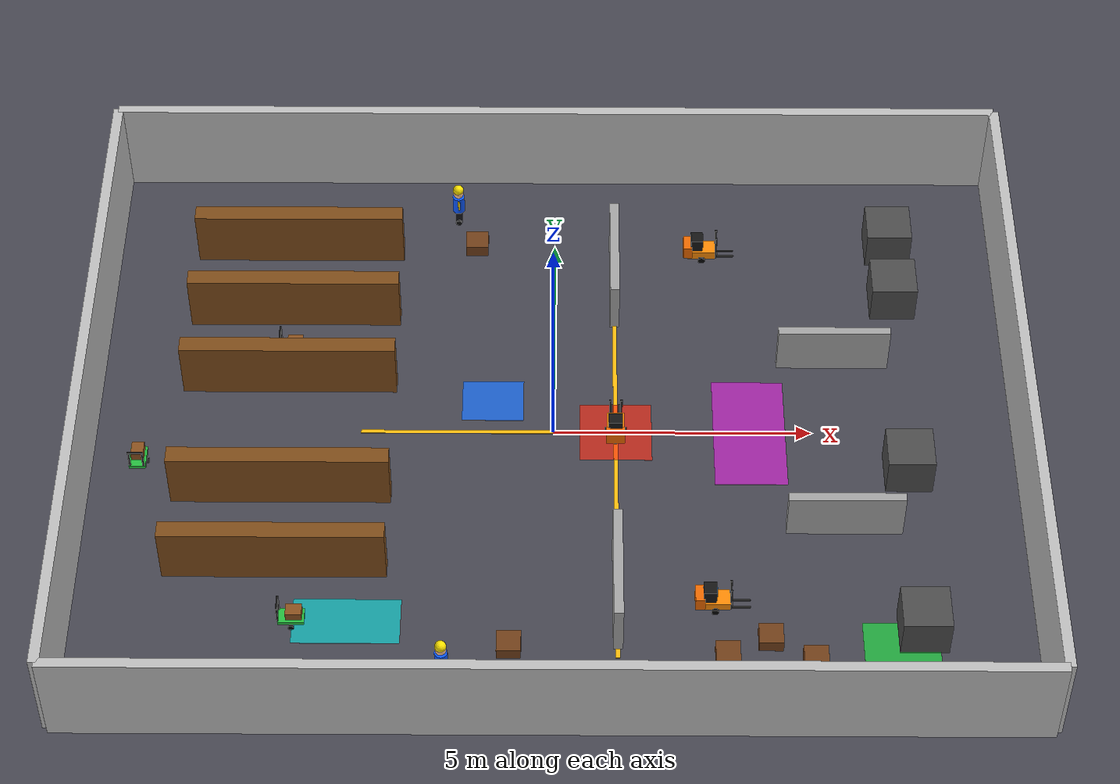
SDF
<?xml version="1.0" ?>
<sdf version="1.9">
<world name="warehouse_world">

<scene>
  <ambient>0.85 0.85 0.85 1</ambient>
  <background>0.9 0.9 0.9 1</background>
  <shadows>false</shadows>
</scene>

<physics name="physics" type="ode">
  <max_step_size>0.001</max_step_size>
  <real_time_factor>1.0</real_time_factor>
  <real_time_update_rate>1000</real_time_update_rate>
</physics>

<plugin filename="gz-sim-physics-system" name="gz::sim::systems::Physics"/>
<plugin filename="gz-sim-user-commands-system" name="gz::sim::systems::UserCommands"/>
<plugin filename="gz-sim-scene-broadcaster-system" name="gz::sim::systems::SceneBroadcaster"/>
<plugin filename="gz-sim-sensors-system" name="gz::sim::systems::Sensors">
  <render_engine>ogre2</render_engine>
</plugin>

<light type="directional" name="sun">
  <cast_shadows>false</cast_shadows>
  <pose>0 0 20 0 0 0</pose>
  <diffuse>1 1 1 1</diffuse>
  <specular>0.5 0.5 0.5 1</specular>
  <direction>-0.3 0.3 -1</direction>
</light>

<model name="ground">
  <static>true</static>
  <link name="ground_link">
    <collision name="collision">
      <geometry><plane><normal>0 0 1</normal><size>18 14</size></plane></geometry>
      <surface><friction><ode><mu>0.9</mu><mu2>0.9</mu2></ode></friction></surface>
    </collision>
    <visual name="visual">
      <geometry><plane><normal>0 0 1</normal><size>18 14</size></plane></geometry>
      <material><ambient>0.28 0.28 0.32 1</ambient><diffuse>0.28 0.28 0.32 1</diffuse></material>
    </visual>
  </link>
</model>

<model name="floor_markings">
  <static>true</static>
  <link name="main_lane_center_line">
    <pose>1.2 0 0.006 0 0 0</pose>
    <visual name="visual"><geometry><box><size>0.08 10.8 0.01</size></box></geometry><material><ambient>1.0 0.75 0.05 1</ambient><diffuse>1.0 0.75 0.05 1</diffuse></material></visual>
  </link>
  <link name="crossing_lane">
    <pose>0 0.0 0.007 0 0 0</pose>
    <visual name="visual"><geometry><box><size>7.5 0.08 0.01</size></box></geometry><material><ambient>1.0 0.75 0.05 1</ambient><diffuse>1.0 0.75 0.05 1</diffuse></material></visual>
  </link>
  <link name="robot_start_zone">
    <pose>-1.2 0.8 0.008 0 0 0</pose>
    <visual name="visual"><geometry><box><size>1.2 1.0 0.01</size></box></geometry><material><ambient>0.1 0.45 1.0 0.75</ambient><diffuse>0.1 0.45 1.0 0.75</diffuse></material></visual>
  </link>
  <link name="crossing_zone">
    <pose>1.2 0.0 0.009 0 0 0</pose>
    <visual name="visual"><geometry><box><size>1.4 1.4 0.01</size></box></geometry><material><ambient>1.0 0.15 0.05 0.65</ambient><diffuse>1.0 0.15 0.05 0.65</diffuse></material></visual>
  </link>
  <link name="head_on_zone">
    <pose>3.8 0.0 0.009 0 0 0</pose>
    <visual name="visual"><geometry><box><size>1.4 2.6 0.01</size></box></geometry><material><ambient>0.9 0.1 0.9 0.6</ambient><diffuse>0.9 0.1 0.9 0.6</diffuse></material></visual>
  </link>
  <link name="parking_zone">
    <pose>6.4 -5.2 0.009 0 0 0</pose>
    <visual name="visual"><geometry><box><size>1.4 1.2 0.01</size></box></geometry><material><ambient>0.1 0.9 0.25 0.65</ambient><diffuse>0.1 0.9 0.25 0.65</diffuse></material></visual>
  </link>
  <link name="prediction_test_zone">
    <pose>-3.8 -4.6 0.009 0 0 0</pose>
    <visual name="visual"><geometry><box><size>2.0 1.0 0.01</size></box></geometry><material><ambient>0.0 0.9 0.9 0.6</ambient><diffuse>0.0 0.9 0.9 0.6</diffuse></material></visual>
  </link>
</model>

<model name="warehouse_walls">
  <static>true</static>
  <link name="north_wall"><pose>0 7 1 0 0 0</pose><collision name="collision"><geometry><box><size>18 0.2 2</size></box></geometry></collision><visual name="visual"><geometry><box><size>18 0.2 2</size></box></geometry><material><ambient>0.75 0.75 0.75 1</ambient><diffuse>0.75 0.75 0.75 1</diffuse></material></visual></link>
  <link name="south_wall"><pose>0 -7 1 0 0 0</pose><collision name="collision"><geometry><box><size>18 0.2 2</size></box></geometry></collision><visual name="visual"><geometry><box><size>18 0.2 2</size></box></geometry><material><ambient>0.75 0.75 0.75 1</ambient><diffuse>0.75 0.75 0.75 1</diffuse></material></visual></link>
  <link name="east_wall"><pose>9 0 1 0 0 0</pose><collision name="collision"><geometry><box><size>0.2 14 2</size></box></geometry></collision><visual name="visual"><geometry><box><size>0.2 14 2</size></box></geometry><material><ambient>0.75 0.75 0.75 1</ambient><diffuse>0.75 0.75 0.75 1</diffuse></material></visual></link>
  <link name="west_wall"><pose>-9 0 1 0 0 0</pose><collision name="collision"><geometry><box><size>0.2 14 2</size></box></geometry></collision><visual name="visual"><geometry><box><size>0.2 14 2</size></box></geometry><material><ambient>0.75 0.75 0.75 1</ambient><diffuse>0.75 0.75 0.75 1</diffuse></material></visual></link>
</model>

<model name="storage_racks">
  <static>true</static>
  <link name="rack_1"><pose>-5.2 4.8 0.6 0 0 0</pose><collision name="collision"><geometry><box><size>4.2 0.35 1.2</size></box></geometry></collision><visual name="visual"><geometry><box><size>4.2 0.35 1.2</size></box></geometry><material><ambient>0.5 0.3 0.1 1</ambient><diffuse>0.5 0.3 0.1 1</diffuse></material></visual></link>
  <link name="rack_2"><pose>-5.2 3.0 0.6 0 0 0</pose><collision name="collision"><geometry><box><size>4.2 0.35 1.2</size></box></geometry></collision><visual name="visual"><geometry><box><size>4.2 0.35 1.2</size></box></geometry><material><ambient>0.5 0.3 0.1 1</ambient><diffuse>0.5 0.3 0.1 1</diffuse></material></visual></link>
  <link name="rack_3"><pose>-5.2 1.2 0.6 0 0 0</pose><collision name="collision"><geometry><box><size>4.2 0.35 1.2</size></box></geometry></collision><visual name="visual"><geometry><box><size>4.2 0.35 1.2</size></box></geometry><material><ambient>0.5 0.3 0.1 1</ambient><diffuse>0.5 0.3 0.1 1</diffuse></material></visual></link>
  <link name="rack_4"><pose>-5.2 -1.6 0.6 0 0 0</pose><collision name="collision"><geometry><box><size>4.2 0.35 1.2</size></box></geometry></collision><visual name="visual"><geometry><box><size>4.2 0.35 1.2</size></box></geometry><material><ambient>0.5 0.3 0.1 1</ambient><diffuse>0.5 0.3 0.1 1</diffuse></material></visual></link>
  <link name="rack_5"><pose>-5.2 -3.4 0.6 0 0 0</pose><collision name="collision"><geometry><box><size>4.2 0.35 1.2</size></box></geometry></collision><visual name="visual"><geometry><box><size>4.2 0.35 1.2</size></box></geometry><material><ambient>0.5 0.3 0.1 1</ambient><diffuse>0.5 0.3 0.1 1</diffuse></material></visual></link>
</model>

<model name="internal_walls">
  <static>true</static>
  <link name="partition_1"><pose>1.2 4.0 0.55 0 0 0</pose><collision name="collision"><geometry><box><size>0.18 2.4 1.1</size></box></geometry></collision><visual name="visual"><geometry><box><size>0.18 2.4 1.1</size></box></geometry><material><ambient>0.65 0.65 0.65 1</ambient><diffuse>0.65 0.65 0.65 1</diffuse></material></visual></link>
  <link name="partition_2"><pose>1.2 -4.0 0.55 0 0 0</pose><collision name="collision"><geometry><box><size>0.18 2.4 1.1</size></box></geometry></collision><visual name="visual"><geometry><box><size>0.18 2.4 1.1</size></box></geometry><material><ambient>0.65 0.65 0.65 1</ambient><diffuse>0.65 0.65 0.65 1</diffuse></material></visual></link>
  <link name="short_wall_1"><pose>5.5 1.8 0.5 0 0 0</pose><collision name="collision"><geometry><box><size>2.2 0.18 1.0</size></box></geometry></collision><visual name="visual"><geometry><box><size>2.2 0.18 1.0</size></box></geometry><material><ambient>0.65 0.65 0.65 1</ambient><diffuse>0.65 0.65 0.65 1</diffuse></material></visual></link>
  <link name="short_wall_2"><pose>5.5 -2.4 0.5 0 0 0</pose><collision name="collision"><geometry><box><size>2.2 0.18 1.0</size></box></geometry></collision><visual name="visual"><geometry><box><size>2.2 0.18 1.0</size></box></geometry><material><ambient>0.65 0.65 0.65 1</ambient><diffuse>0.65 0.65 0.65 1</diffuse></material></visual></link>
</model>

<model name="machines">
  <static>true</static>
  <link name="machine_1"><pose>6.8 5.0 0.4 0 0 0</pose><collision name="collision"><geometry><box><size>0.9 0.9 0.8</size></box></geometry></collision><visual name="visual"><geometry><box><size>0.9 0.9 0.8</size></box></geometry><material><ambient>0.3 0.3 0.3 1</ambient><diffuse>0.3 0.3 0.3 1</diffuse></material></visual></link>
  <link name="machine_2"><pose>6.8 3.5 0.4 0 0 0</pose><collision name="collision"><geometry><box><size>0.9 0.9 0.8</size></box></geometry></collision><visual name="visual"><geometry><box><size>0.9 0.9 0.8</size></box></geometry><material><ambient>0.3 0.3 0.3 1</ambient><diffuse>0.3 0.3 0.3 1</diffuse></material></visual></link>
  <link name="machine_3"><pose>6.8 -1.0 0.4 0 0 0</pose><collision name="collision"><geometry><box><size>0.9 0.9 0.8</size></box></geometry></collision><visual name="visual"><geometry><box><size>0.9 0.9 0.8</size></box></geometry><material><ambient>0.3 0.3 0.3 1</ambient><diffuse>0.3 0.3 0.3 1</diffuse></material></visual></link>
  <link name="machine_4"><pose>6.8 -4.8 0.4 0 0 0</pose><collision name="collision"><geometry><box><size>0.9 0.9 0.8</size></box></geometry></collision><visual name="visual"><geometry><box><size>0.9 0.9 0.8</size></box></geometry><material><ambient>0.3 0.3 0.3 1</ambient><diffuse>0.3 0.3 0.3 1</diffuse></material></visual></link>
</model>

<model name="pallets">
  <static>true</static>
  <link name="pallet_1"><pose>3.2 -5.4 0.125 0 0 0</pose><collision name="collision"><geometry><box><size>0.45 0.45 0.25</size></box></geometry></collision><visual name="visual"><geometry><box><size>0.45 0.45 0.25</size></box></geometry><material><ambient>0.45 0.25 0.1 1</ambient><diffuse>0.45 0.25 0.1 1</diffuse></material></visual></link>
  <link name="pallet_2"><pose>4.0 -5.0 0.125 0 0 0</pose><collision name="collision"><geometry><box><size>0.45 0.45 0.25</size></box></geometry></collision><visual name="visual"><geometry><box><size>0.45 0.45 0.25</size></box></geometry><material><ambient>0.45 0.25 0.1 1</ambient><diffuse>0.45 0.25 0.1 1</diffuse></material></visual></link>
  <link name="pallet_3"><pose>4.8 -5.5 0.125 0 0 0</pose><collision name="collision"><geometry><box><size>0.45 0.45 0.25</size></box></geometry></collision><visual name="visual"><geometry><box><size>0.45 0.45 0.25</size></box></geometry><material><ambient>0.45 0.25 0.1 1</ambient><diffuse>0.45 0.25 0.1 1</diffuse></material></visual></link>
  <link name="pallet_4"><pose>-0.8 -5.2 0.125 0 0 0</pose><collision name="collision"><geometry><box><size>0.45 0.45 0.25</size></box></geometry></collision><visual name="visual"><geometry><box><size>0.45 0.45 0.25</size></box></geometry><material><ambient>0.45 0.25 0.1 1</ambient><diffuse>0.45 0.25 0.1 1</diffuse></material></visual></link>
  <link name="pallet_5"><pose>-1.6 5.0 0.125 0 0 0</pose><collision name="collision"><geometry><box><size>0.45 0.45 0.25</size></box></geometry></collision><visual name="visual"><geometry><box><size>0.45 0.45 0.25</size></box></geometry><material><ambient>0.45 0.25 0.1 1</ambient><diffuse>0.45 0.25 0.1 1</diffuse></material></visual></link>
</model>

<model name="forklift_1">
  <static>false</static>
  <self_collide>false</self_collide>
  <pose>1.2 0.0 0 0 0 1.57</pose>

  <link name="base_link">
    <inertial>
      <pose>0 0 0.11 0 0 0</pose>
      <mass>10.0</mass>
      <inertia>
        <ixx>0.45</ixx>
        <iyy>0.55</iyy>
        <izz>0.45</izz>
      </inertia>
    </inertial>

    <collision name="body_collision">
      <pose>0 0 0.18 0 0 0</pose>
      <geometry><box><size>0.56 0.34 0.18</size></box></geometry>
      <surface>
        <contact><ode><kp>50000</kp><kd>40</kd></ode></contact>
        <friction><ode><mu>0.8</mu><mu2>0.8</mu2></ode></friction>
      </surface>
    </collision>

    <collision name="front_support_collision">
      <pose>0.28 0 0.06 0 0 0</pose>
      <geometry><sphere><radius>0.055</radius></sphere></geometry>
      <surface><friction><ode><mu>0.15</mu><mu2>0.15</mu2></ode></friction></surface>
    </collision>

    <collision name="rear_support_collision">
      <pose>-0.28 0 0.06 0 0 0</pose>
      <geometry><sphere><radius>0.055</radius></sphere></geometry>
      <surface><friction><ode><mu>0.15</mu><mu2>0.15</mu2></ode></friction></surface>
    </collision>

    <visual name="body">
      <pose>0 0 0.18 0 0 0</pose>
      <geometry><box><size>0.56 0.34 0.18</size></box></geometry>
      <material><ambient>1.0 0.55 0.02 1</ambient><diffuse>1.0 0.55 0.02 1</diffuse></material>
    </visual>

    <visual name="counterweight">
      <pose>-0.28 0 0.25 0 0 0</pose>
      <geometry><box><size>0.18 0.36 0.28</size></box></geometry>
      <material><ambient>0.95 0.42 0.0 1</ambient><diffuse>0.95 0.42 0.0 1</diffuse></material>
    </visual>

    <visual name="cabin">
      <pose>-0.10 0 0.40 0 0 0</pose>
      <geometry><box><size>0.24 0.27 0.30</size></box></geometry>
      <material><ambient>0.08 0.08 0.08 1</ambient><diffuse>0.08 0.08 0.08 1</diffuse></material>
    </visual>

    <visual name="window">
      <pose>0.025 0 0.43 0 0 0</pose>
      <geometry><box><size>0.012 0.23 0.16</size></box></geometry>
      <material><ambient>0.1 0.45 0.75 0.85</ambient><diffuse>0.1 0.45 0.75 0.85</diffuse></material>
    </visual>

    <visual name="mast_left">
      <pose>0.29 0.11 0.34 0 0 0</pose>
      <geometry><box><size>0.035 0.035 0.55</size></box></geometry>
      <material><ambient>0.12 0.12 0.12 1</ambient><diffuse>0.12 0.12 0.12 1</diffuse></material>
    </visual>

    <visual name="mast_right">
      <pose>0.29 -0.11 0.34 0 0 0</pose>
      <geometry><box><size>0.035 0.035 0.55</size></box></geometry>
      <material><ambient>0.12 0.12 0.12 1</ambient><diffuse>0.12 0.12 0.12 1</diffuse></material>
    </visual>

    <visual name="fork_left">
      <pose>0.47 0.075 0.065 0 0 0</pose>
      <geometry><box><size>0.38 0.035 0.025</size></box></geometry>
      <material><ambient>0.18 0.18 0.18 1</ambient><diffuse>0.18 0.18 0.18 1</diffuse></material>
    </visual>

    <visual name="fork_right">
      <pose>0.47 -0.075 0.065 0 0 0</pose>
      <geometry><box><size>0.38 0.035 0.025</size></box></geometry>
      <material><ambient>0.18 0.18 0.18 1</ambient><diffuse>0.18 0.18 0.18 1</diffuse></material>
    </visual>

    <visual name="front_caster_visual">
      <pose>0.28 0 0.06 0 0 0</pose>
      <geometry><sphere><radius>0.055</radius></sphere></geometry>
      <material><ambient>0.02 0.02 0.02 1</ambient><diffuse>0.02 0.02 0.02 1</diffuse></material>
    </visual>

    <visual name="rear_caster_visual">
      <pose>-0.28 0 0.06 0 0 0</pose>
      <geometry><sphere><radius>0.055</radius></sphere></geometry>
      <material><ambient>0.02 0.02 0.02 1</ambient><diffuse>0.02 0.02 0.02 1</diffuse></material>
    </visual>
  </link>

  <link name="left_wheel">
    <pose>0 0.19 0.07 1.5708 0 0</pose>
    <inertial><mass>0.4</mass><inertia><ixx>0.002</ixx><iyy>0.002</iyy><izz>0.002</izz></inertia></inertial>
    <collision name="collision"><geometry><cylinder><radius>0.07</radius><length>0.045</length></cylinder></geometry><surface><friction><ode><mu>1.2</mu><mu2>1.2</mu2></ode></friction></surface></collision>
    <visual name="visual"><geometry><cylinder><radius>0.07</radius><length>0.045</length></cylinder></geometry><material><ambient>0.02 0.02 0.02 1</ambient><diffuse>0.02 0.02 0.02 1</diffuse></material></visual>
  </link>

  <link name="right_wheel">
    <pose>0 -0.19 0.07 1.5708 0 0</pose>
    <inertial><mass>0.4</mass><inertia><ixx>0.002</ixx><iyy>0.002</iyy><izz>0.002</izz></inertia></inertial>
    <collision name="collision"><geometry><cylinder><radius>0.07</radius><length>0.045</length></cylinder></geometry><surface><friction><ode><mu>1.2</mu><mu2>1.2</mu2></ode></friction></surface></collision>
    <visual name="visual"><geometry><cylinder><radius>0.07</radius><length>0.045</length></cylinder></geometry><material><ambient>0.02 0.02 0.02 1</ambient><diffuse>0.02 0.02 0.02 1</diffuse></material></visual>
  </link>

  <joint name="left_wheel_joint" type="revolute">
    <parent>base_link</parent>
    <child>left_wheel</child>
    <axis><xyz>0 0 1</xyz><limit><lower>-1e16</lower><upper>1e16</upper></limit><dynamics><damping>0.2</damping></dynamics></axis>
  </joint>

  <joint name="right_wheel_joint" type="revolute">
    <parent>base_link</parent>
    <child>right_wheel</child>
    <axis><xyz>0 0 1</xyz><limit><lower>-1e16</lower><upper>1e16</upper></limit><dynamics><damping>0.2</damping></dynamics></axis>
  </joint>

  <plugin filename="gz-sim-diff-drive-system" name="gz::sim::systems::DiffDrive">
    <left_joint>left_wheel_joint</left_joint>
    <right_joint>right_wheel_joint</right_joint>
    <wheel_separation>0.38</wheel_separation>
    <wheel_radius>0.07</wheel_radius>
    <topic>/model/forklift_1/cmd_vel</topic>
    <odom_publish_frequency>20</odom_publish_frequency>
    <max_linear_acceleration>0.4</max_linear_acceleration>
    <max_angular_acceleration>0.8</max_angular_acceleration>
  </plugin>
</model>

<model name="forklift_2">
  <static>false</static>
  <self_collide>false</self_collide>
  <pose>3.0 4.8 0 0 0 0</pose>

  <link name="base_link">
    <inertial>
      <pose>0 0 0.11 0 0 0</pose>
      <mass>10.0</mass>
      <inertia>
        <ixx>0.45</ixx>
        <iyy>0.55</iyy>
        <izz>0.45</izz>
      </inertia>
    </inertial>

    <collision name="body_collision">
      <pose>0 0 0.18 0 0 0</pose>
      <geometry><box><size>0.56 0.34 0.18</size></box></geometry>
      <surface>
        <contact><ode><kp>50000</kp><kd>40</kd></ode></contact>
        <friction><ode><mu>0.8</mu><mu2>0.8</mu2></ode></friction>
      </surface>
    </collision>

    <collision name="front_support_collision">
      <pose>0.28 0 0.06 0 0 0</pose>
      <geometry><sphere><radius>0.055</radius></sphere></geometry>
      <surface><friction><ode><mu>0.15</mu><mu2>0.15</mu2></ode></friction></surface>
    </collision>

    <collision name="rear_support_collision">
      <pose>-0.28 0 0.06 0 0 0</pose>
      <geometry><sphere><radius>0.055</radius></sphere></geometry>
      <surface><friction><ode><mu>0.15</mu><mu2>0.15</mu2></ode></friction></surface>
    </collision>

    <visual name="body">
      <pose>0 0 0.18 0 0 0</pose>
      <geometry><box><size>0.56 0.34 0.18</size></box></geometry>
      <material><ambient>1.0 0.55 0.02 1</ambient><diffuse>1.0 0.55 0.02 1</diffuse></material>
    </visual>

    <visual name="counterweight">
      <pose>-0.28 0 0.25 0 0 0</pose>
      <geometry><box><size>0.18 0.36 0.28</size></box></geometry>
      <material><ambient>0.95 0.42 0.0 1</ambient><diffuse>0.95 0.42 0.0 1</diffuse></material>
    </visual>

    <visual name="cabin">
      <pose>-0.10 0 0.40 0 0 0</pose>
      <geometry><box><size>0.24 0.27 0.30</size></box></geometry>
      <material><ambient>0.08 0.08 0.08 1</ambient><diffuse>0.08 0.08 0.08 1</diffuse></material>
    </visual>

    <visual name="window">
      <pose>0.025 0 0.43 0 0 0</pose>
      <geometry><box><size>0.012 0.23 0.16</size></box></geometry>
      <material><ambient>0.1 0.45 0.75 0.85</ambient><diffuse>0.1 0.45 0.75 0.85</diffuse></material>
    </visual>

    <visual name="mast_left">
      <pose>0.29 0.11 0.34 0 0 0</pose>
      <geometry><box><size>0.035 0.035 0.55</size></box></geometry>
      <material><ambient>0.12 0.12 0.12 1</ambient><diffuse>0.12 0.12 0.12 1</diffuse></material>
    </visual>

    <visual name="mast_right">
      <pose>0.29 -0.11 0.34 0 0 0</pose>
      <geometry><box><size>0.035 0.035 0.55</size></box></geometry>
      <material><ambient>0.12 0.12 0.12 1</ambient><diffuse>0.12 0.12 0.12 1</diffuse></material>
    </visual>

    <visual name="fork_left">
      <pose>0.47 0.075 0.065 0 0 0</pose>
      <geometry><box><size>0.38 0.035 0.025</size></box></geometry>
      <material><ambient>0.18 0.18 0.18 1</ambient><diffuse>0.18 0.18 0.18 1</diffuse></material>
    </visual>

    <visual name="fork_right">
      <pose>0.47 -0.075 0.065 0 0 0</pose>
      <geometry><box><size>0.38 0.035 0.025</size></box></geometry>
      <material><ambient>0.18 0.18 0.18 1</ambient><diffuse>0.18 0.18 0.18 1</diffuse></material>
    </visual>

    <visual name="front_caster_visual">
      <pose>0.28 0 0.06 0 0 0</pose>
      <geometry><sphere><radius>0.055</radius></sphere></geometry>
      <material><ambient>0.02 0.02 0.02 1</ambient><diffuse>0.02 0.02 0.02 1</diffuse></material>
    </visual>

    <visual name="rear_caster_visual">
      <pose>-0.28 0 0.06 0 0 0</pose>
      <geometry><sphere><radius>0.055</radius></sphere></geometry>
      <material><ambient>0.02 0.02 0.02 1</ambient><diffuse>0.02 0.02 0.02 1</diffuse></material>
    </visual>
  </link>

  <link name="left_wheel">
    <pose>0 0.19 0.07 1.5708 0 0</pose>
    <inertial><mass>0.4</mass><inertia><ixx>0.002</ixx><iyy>0.002</iyy><izz>0.002</izz></inertia></inertial>
    <collision name="collision"><geometry><cylinder><radius>0.07</radius><length>0.045</length></cylinder></geometry><surface><friction><ode><mu>1.2</mu><mu2>1.2</mu2></ode></friction></surface></collision>
    <visual name="visual"><geometry><cylinder><radius>0.07</radius><length>0.045</length></cylinder></geometry><material><ambient>0.02 0.02 0.02 1</ambient><diffuse>0.02 0.02 0.02 1</diffuse></material></visual>
  </link>

  <link name="right_wheel">
    <pose>0 -0.19 0.07 1.5708 0 0</pose>
    <inertial><mass>0.4</mass><inertia><ixx>0.002</ixx><iyy>0.002</iyy><izz>0.002</izz></inertia></inertial>
    <collision name="collision"><geometry><cylinder><radius>0.07</radius><length>0.045</length></cylinder></geometry><surface><friction><ode><mu>1.2</mu><mu2>1.2</mu2></ode></friction></surface></collision>
    <visual name="visual"><geometry><cylinder><radius>0.07</radius><length>0.045</length></cylinder></geometry><material><ambient>0.02 0.02 0.02 1</ambient><diffuse>0.02 0.02 0.02 1</diffuse></material></visual>
  </link>

  <joint name="left_wheel_joint" type="revolute">
    <parent>base_link</parent>
    <child>left_wheel</child>
    <axis><xyz>0 0 1</xyz><limit><lower>-1e16</lower><upper>1e16</upper></limit><dynamics><damping>0.2</damping></dynamics></axis>
  </joint>

  <joint name="right_wheel_joint" type="revolute">
    <parent>base_link</parent>
    <child>right_wheel</child>
    <axis><xyz>0 0 1</xyz><limit><lower>-1e16</lower><upper>1e16</upper></limit><dynamics><damping>0.2</damping></dynamics></axis>
  </joint>

  <plugin filename="gz-sim-diff-drive-system" name="gz::sim::systems::DiffDrive">
    <left_joint>left_wheel_joint</left_joint>
    <right_joint>right_wheel_joint</right_joint>
    <wheel_separation>0.38</wheel_separation>
    <wheel_radius>0.07</wheel_radius>
    <topic>/model/forklift_2/cmd_vel</topic>
    <odom_publish_frequency>20</odom_publish_frequency>
    <max_linear_acceleration>0.4</max_linear_acceleration>
    <max_angular_acceleration>0.8</max_angular_acceleration>
  </plugin>
</model>

<model name="forklift_3">
  <static>false</static>
  <self_collide>false</self_collide>
  <pose>3.0 -4.2 0 0 0 0</pose>

  <link name="base_link">
    <inertial>
      <pose>0 0 0.11 0 0 0</pose>
      <mass>10.0</mass>
      <inertia>
        <ixx>0.45</ixx>
        <iyy>0.55</iyy>
        <izz>0.45</izz>
      </inertia>
    </inertial>

    <collision name="body_collision">
      <pose>0 0 0.18 0 0 0</pose>
      <geometry><box><size>0.56 0.34 0.18</size></box></geometry>
      <surface>
        <contact><ode><kp>50000</kp><kd>40</kd></ode></contact>
        <friction><ode><mu>0.8</mu><mu2>0.8</mu2></ode></friction>
      </surface>
    </collision>

    <collision name="front_support_collision">
      <pose>0.28 0 0.06 0 0 0</pose>
      <geometry><sphere><radius>0.055</radius></sphere></geometry>
      <surface><friction><ode><mu>0.15</mu><mu2>0.15</mu2></ode></friction></surface>
    </collision>

    <collision name="rear_support_collision">
      <pose>-0.28 0 0.06 0 0 0</pose>
      <geometry><sphere><radius>0.055</radius></sphere></geometry>
      <surface><friction><ode><mu>0.15</mu><mu2>0.15</mu2></ode></friction></surface>
    </collision>

    <visual name="body">
      <pose>0 0 0.18 0 0 0</pose>
      <geometry><box><size>0.56 0.34 0.18</size></box></geometry>
      <material><ambient>1.0 0.55 0.02 1</ambient><diffuse>1.0 0.55 0.02 1</diffuse></material>
    </visual>

    <visual name="counterweight">
      <pose>-0.28 0 0.25 0 0 0</pose>
      <geometry><box><size>0.18 0.36 0.28</size></box></geometry>
      <material><ambient>0.95 0.42 0.0 1</ambient><diffuse>0.95 0.42 0.0 1</diffuse></material>
    </visual>

    <visual name="cabin">
      <pose>-0.10 0 0.40 0 0 0</pose>
      <geometry><box><size>0.24 0.27 0.30</size></box></geometry>
      <material><ambient>0.08 0.08 0.08 1</ambient><diffuse>0.08 0.08 0.08 1</diffuse></material>
    </visual>

    <visual name="window">
      <pose>0.025 0 0.43 0 0 0</pose>
      <geometry><box><size>0.012 0.23 0.16</size></box></geometry>
      <material><ambient>0.1 0.45 0.75 0.85</ambient><diffuse>0.1 0.45 0.75 0.85</diffuse></material>
    </visual>

    <visual name="mast_left">
      <pose>0.29 0.11 0.34 0 0 0</pose>
      <geometry><box><size>0.035 0.035 0.55</size></box></geometry>
      <material><ambient>0.12 0.12 0.12 1</ambient><diffuse>0.12 0.12 0.12 1</diffuse></material>
    </visual>

    <visual name="mast_right">
      <pose>0.29 -0.11 0.34 0 0 0</pose>
      <geometry><box><size>0.035 0.035 0.55</size></box></geometry>
      <material><ambient>0.12 0.12 0.12 1</ambient><diffuse>0.12 0.12 0.12 1</diffuse></material>
    </visual>

    <visual name="fork_left">
      <pose>0.47 0.075 0.065 0 0 0</pose>
      <geometry><box><size>0.38 0.035 0.025</size></box></geometry>
      <material><ambient>0.18 0.18 0.18 1</ambient><diffuse>0.18 0.18 0.18 1</diffuse></material>
    </visual>

    <visual name="fork_right">
      <pose>0.47 -0.075 0.065 0 0 0</pose>
      <geometry><box><size>0.38 0.035 0.025</size></box></geometry>
      <material><ambient>0.18 0.18 0.18 1</ambient><diffuse>0.18 0.18 0.18 1</diffuse></material>
    </visual>

    <visual name="front_caster_visual">
      <pose>0.28 0 0.06 0 0 0</pose>
      <geometry><sphere><radius>0.055</radius></sphere></geometry>
      <material><ambient>0.02 0.02 0.02 1</ambient><diffuse>0.02 0.02 0.02 1</diffuse></material>
    </visual>

    <visual name="rear_caster_visual">
      <pose>-0.28 0 0.06 0 0 0</pose>
      <geometry><sphere><radius>0.055</radius></sphere></geometry>
      <material><ambient>0.02 0.02 0.02 1</ambient><diffuse>0.02 0.02 0.02 1</diffuse></material>
    </visual>
  </link>

  <link name="left_wheel">
    <pose>0 0.19 0.07 1.5708 0 0</pose>
    <inertial><mass>0.4</mass><inertia><ixx>0.002</ixx><iyy>0.002</iyy><izz>0.002</izz></inertia></inertial>
    <collision name="collision"><geometry><cylinder><radius>0.07</radius><length>0.045</length></cylinder></geometry><surface><friction><ode><mu>1.2</mu><mu2>1.2</mu2></ode></friction></surface></collision>
    <visual name="visual"><geometry><cylinder><radius>0.07</radius><length>0.045</length></cylinder></geometry><material><ambient>0.02 0.02 0.02 1</ambient><diffuse>0.02 0.02 0.02 1</diffuse></material></visual>
  </link>

  <link name="right_wheel">
    <pose>0 -0.19 0.07 1.5708 0 0</pose>
    <inertial><mass>0.4</mass><inertia><ixx>0.002</ixx><iyy>0.002</iyy><izz>0.002</izz></inertia></inertial>
    <collision name="collision"><geometry><cylinder><radius>0.07</radius><length>0.045</length></cylinder></geometry><surface><friction><ode><mu>1.2</mu><mu2>1.2</mu2></ode></friction></surface></collision>
    <visual name="visual"><geometry><cylinder><radius>0.07</radius><length>0.045</length></cylinder></geometry><material><ambient>0.02 0.02 0.02 1</ambient><diffuse>0.02 0.02 0.02 1</diffuse></material></visual>
  </link>

  <joint name="left_wheel_joint" type="revolute">
    <parent>base_link</parent>
    <child>left_wheel</child>
    <axis><xyz>0 0 1</xyz><limit><lower>-1e16</lower><upper>1e16</upper></limit><dynamics><damping>0.2</damping></dynamics></axis>
  </joint>

  <joint name="right_wheel_joint" type="revolute">
    <parent>base_link</parent>
    <child>right_wheel</child>
    <axis><xyz>0 0 1</xyz><limit><lower>-1e16</lower><upper>1e16</upper></limit><dynamics><damping>0.2</damping></dynamics></axis>
  </joint>

  <plugin filename="gz-sim-diff-drive-system" name="gz::sim::systems::DiffDrive">
    <left_joint>left_wheel_joint</left_joint>
    <right_joint>right_wheel_joint</right_joint>
    <wheel_separation>0.38</wheel_separation>
    <wheel_radius>0.07</wheel_radius>
    <topic>/model/forklift_3/cmd_vel</topic>
    <odom_publish_frequency>20</odom_publish_frequency>
    <max_linear_acceleration>0.4</max_linear_acceleration>
    <max_angular_acceleration>0.8</max_angular_acceleration>
  </plugin>
</model>

<model name="human_1">
  <static>false</static>
  <self_collide>false</self_collide>
  <pose>-2.0 5.8 0 0 0 0</pose>

  <link name="base_link">
    <inertial><pose>0 0 0.2 0 0 0</pose><mass>2.5</mass><inertia><ixx>0.08</ixx><iyy>0.08</iyy><izz>0.08</izz></inertia></inertial>
    <collision name="collision"><pose>0 0 0.38 0 0 0</pose><geometry><cylinder><radius>0.13</radius><length>0.75</length></cylinder></geometry></collision>
    <visual name="legs"><pose>0 0 0.18 0 0 0</pose><geometry><box><size>0.14 0.18 0.34</size></box></geometry><material><ambient>0.08 0.08 0.10 1</ambient><diffuse>0.08 0.08 0.10 1</diffuse></material></visual>
    <visual name="torso"><pose>0 0 0.50 0 0 0</pose><geometry><cylinder><radius>0.12</radius><length>0.38</length></cylinder></geometry><material><ambient>0.05 0.35 1.0 1</ambient><diffuse>0.05 0.35 1.0 1</diffuse></material></visual>
    <visual name="safety_vest"><pose>0.01 0 0.53 0 0 0</pose><geometry><box><size>0.035 0.245 0.26</size></box></geometry><material><ambient>1.0 0.85 0.05 1</ambient><diffuse>1.0 0.85 0.05 1</diffuse></material></visual>
    <visual name="head"><pose>0 0 0.78 0 0 0</pose><geometry><sphere><radius>0.105</radius></sphere></geometry><material><ambient>1.0 0.78 0.58 1</ambient><diffuse>1.0 0.78 0.58 1</diffuse></material></visual>
    <visual name="helmet"><pose>0 0 0.875 0 0 0</pose><geometry><sphere><radius>0.108</radius></sphere></geometry><material><ambient>1.0 0.9 0.0 1</ambient><diffuse>1.0 0.9 0.0 1</diffuse></material></visual>
  </link>

  <link name="left_wheel"><pose>0 0.13 0.06 1.5708 0 0</pose><inertial><mass>0.05</mass><inertia><ixx>0.0001</ixx><iyy>0.0001</iyy><izz>0.0001</izz></inertia></inertial><collision name="collision"><geometry><cylinder><radius>0.06</radius><length>0.03</length></cylinder></geometry></collision><visual name="visual"><geometry><cylinder><radius>0.06</radius><length>0.03</length></cylinder></geometry><material><ambient>0.05 0.05 0.05 1</ambient><diffuse>0.05 0.05 0.05 1</diffuse></material></visual></link>
  <link name="right_wheel"><pose>0 -0.13 0.06 1.5708 0 0</pose><inertial><mass>0.05</mass><inertia><ixx>0.0001</ixx><iyy>0.0001</iyy><izz>0.0001</izz></inertia></inertial><collision name="collision"><geometry><cylinder><radius>0.06</radius><length>0.03</length></cylinder></geometry></collision><visual name="visual"><geometry><cylinder><radius>0.06</radius><length>0.03</length></cylinder></geometry><material><ambient>0.05 0.05 0.05 1</ambient><diffuse>0.05 0.05 0.05 1</diffuse></material></visual></link>

  <joint name="left_wheel_joint" type="revolute"><parent>base_link</parent><child>left_wheel</child><axis><xyz>0 0 1</xyz><limit><lower>-1e16</lower><upper>1e16</upper></limit><dynamics><damping>0.1</damping></dynamics></axis></joint>
  <joint name="right_wheel_joint" type="revolute"><parent>base_link</parent><child>right_wheel</child><axis><xyz>0 0 1</xyz><limit><lower>-1e16</lower><upper>1e16</upper></limit><dynamics><damping>0.1</damping></dynamics></axis></joint>

  <plugin filename="gz-sim-diff-drive-system" name="gz::sim::systems::DiffDrive">
    <left_joint>left_wheel_joint</left_joint>
    <right_joint>right_wheel_joint</right_joint>
    <wheel_separation>0.26</wheel_separation>
    <wheel_radius>0.06</wheel_radius>
    <topic>/model/human_1/cmd_vel</topic>
    <odom_publish_frequency>20</odom_publish_frequency>
    <max_linear_acceleration>0.35</max_linear_acceleration>
    <max_angular_acceleration>0.7</max_angular_acceleration>
  </plugin>
</model>

<model name="human_2">
  <static>false</static>
  <self_collide>false</self_collide>
  <pose>-2.0 -5.8 0 0 0 0</pose>

  <link name="base_link">
    <inertial><pose>0 0 0.2 0 0 0</pose><mass>2.5</mass><inertia><ixx>0.08</ixx><iyy>0.08</iyy><izz>0.08</izz></inertia></inertial>
    <collision name="collision"><pose>0 0 0.38 0 0 0</pose><geometry><cylinder><radius>0.13</radius><length>0.75</length></cylinder></geometry></collision>
    <visual name="legs"><pose>0 0 0.18 0 0 0</pose><geometry><box><size>0.14 0.18 0.34</size></box></geometry><material><ambient>0.08 0.08 0.10 1</ambient><diffuse>0.08 0.08 0.10 1</diffuse></material></visual>
    <visual name="torso"><pose>0 0 0.50 0 0 0</pose><geometry><cylinder><radius>0.12</radius><length>0.38</length></cylinder></geometry><material><ambient>0.05 0.35 1.0 1</ambient><diffuse>0.05 0.35 1.0 1</diffuse></material></visual>
    <visual name="safety_vest"><pose>0.01 0 0.53 0 0 0</pose><geometry><box><size>0.035 0.245 0.26</size></box></geometry><material><ambient>1.0 0.85 0.05 1</ambient><diffuse>1.0 0.85 0.05 1</diffuse></material></visual>
    <visual name="head"><pose>0 0 0.78 0 0 0</pose><geometry><sphere><radius>0.105</radius></sphere></geometry><material><ambient>1.0 0.78 0.58 1</ambient><diffuse>1.0 0.78 0.58 1</diffuse></material></visual>
    <visual name="helmet"><pose>0 0 0.875 0 0 0</pose><geometry><sphere><radius>0.108</radius></sphere></geometry><material><ambient>1.0 0.9 0.0 1</ambient><diffuse>1.0 0.9 0.0 1</diffuse></material></visual>
  </link>

  <link name="left_wheel"><pose>0 0.13 0.06 1.5708 0 0</pose><inertial><mass>0.05</mass><inertia><ixx>0.0001</ixx><iyy>0.0001</iyy><izz>0.0001</izz></inertia></inertial><collision name="collision"><geometry><cylinder><radius>0.06</radius><length>0.03</length></cylinder></geometry></collision><visual name="visual"><geometry><cylinder><radius>0.06</radius><length>0.03</length></cylinder></geometry><material><ambient>0.05 0.05 0.05 1</ambient><diffuse>0.05 0.05 0.05 1</diffuse></material></visual></link>
  <link name="right_wheel"><pose>0 -0.13 0.06 1.5708 0 0</pose><inertial><mass>0.05</mass><inertia><ixx>0.0001</ixx><iyy>0.0001</iyy><izz>0.0001</izz></inertia></inertial><collision name="collision"><geometry><cylinder><radius>0.06</radius><length>0.03</length></cylinder></geometry></collision><visual name="visual"><geometry><cylinder><radius>0.06</radius><length>0.03</length></cylinder></geometry><material><ambient>0.05 0.05 0.05 1</ambient><diffuse>0.05 0.05 0.05 1</diffuse></material></visual></link>

  <joint name="left_wheel_joint" type="revolute"><parent>base_link</parent><child>left_wheel</child><axis><xyz>0 0 1</xyz><limit><lower>-1e16</lower><upper>1e16</upper></limit><dynamics><damping>0.1</damping></dynamics></axis></joint>
  <joint name="right_wheel_joint" type="revolute"><parent>base_link</parent><child>right_wheel</child><axis><xyz>0 0 1</xyz><limit><lower>-1e16</lower><upper>1e16</upper></limit><dynamics><damping>0.1</damping></dynamics></axis></joint>

  <plugin filename="gz-sim-diff-drive-system" name="gz::sim::systems::DiffDrive">
    <left_joint>left_wheel_joint</left_joint>
    <right_joint>right_wheel_joint</right_joint>
    <wheel_separation>0.26</wheel_separation>
    <wheel_radius>0.06</wheel_radius>
    <topic>/model/human_2/cmd_vel</topic>
    <odom_publish_frequency>20</odom_publish_frequency>
    <max_linear_acceleration>0.35</max_linear_acceleration>
    <max_angular_acceleration>0.7</max_angular_acceleration>
  </plugin>
</model>

<model name="cart_1">
  <static>false</static>
  <self_collide>false</self_collide>
  <pose>-4.8 -4.6 0 0 0 0</pose>

  <link name="base_link">
    <inertial><pose>0 0 0.09 0 0 0</pose><mass>4.0</mass><inertia><ixx>0.18</ixx><iyy>0.20</iyy><izz>0.16</izz></inertia></inertial>
    <collision name="platform_collision"><pose>0 0 0.14 0 0 0</pose><geometry><box><size>0.48 0.32 0.08</size></box></geometry></collision>
    <collision name="front_caster_collision"><pose>0.22 0 0.05 0 0 0</pose><geometry><sphere><radius>0.045</radius></sphere></geometry><surface><friction><ode><mu>0.12</mu><mu2>0.12</mu2></ode></friction></surface></collision>
    <collision name="rear_caster_collision"><pose>-0.22 0 0.05 0 0 0</pose><geometry><sphere><radius>0.045</radius></sphere></geometry><surface><friction><ode><mu>0.12</mu><mu2>0.12</mu2></ode></friction></surface></collision>
    <visual name="platform"><pose>0 0 0.14 0 0 0</pose><geometry><box><size>0.48 0.32 0.08</size></box></geometry><material><ambient>0.15 0.75 0.25 1</ambient><diffuse>0.15 0.75 0.25 1</diffuse></material></visual>
    <visual name="load_box"><pose>0.05 0 0.28 0 0 0</pose><geometry><box><size>0.30 0.24 0.18</size></box></geometry><material><ambient>0.55 0.32 0.12 1</ambient><diffuse>0.55 0.32 0.12 1</diffuse></material></visual>
    <visual name="handle_left"><pose>-0.24 0.13 0.37 0 0 0</pose><geometry><box><size>0.035 0.035 0.36</size></box></geometry><material><ambient>0.08 0.08 0.08 1</ambient><diffuse>0.08 0.08 0.08 1</diffuse></material></visual>
    <visual name="handle_right"><pose>-0.24 -0.13 0.37 0 0 0</pose><geometry><box><size>0.035 0.035 0.36</size></box></geometry><material><ambient>0.08 0.08 0.08 1</ambient><diffuse>0.08 0.08 0.08 1</diffuse></material></visual>
    <visual name="handle_bar"><pose>-0.24 0 0.55 0 0 0</pose><geometry><box><size>0.035 0.30 0.035</size></box></geometry><material><ambient>0.08 0.08 0.08 1</ambient><diffuse>0.08 0.08 0.08 1</diffuse></material></visual>
  </link>

  <link name="left_wheel"><pose>0 0.18 0.055 1.5708 0 0</pose><inertial><mass>0.15</mass><inertia><ixx>0.0008</ixx><iyy>0.0008</iyy><izz>0.0008</izz></inertia></inertial><collision name="collision"><geometry><cylinder><radius>0.055</radius><length>0.04</length></cylinder></geometry><surface><friction><ode><mu>1.0</mu><mu2>1.0</mu2></ode></friction></surface></collision><visual name="visual"><geometry><cylinder><radius>0.055</radius><length>0.04</length></cylinder></geometry><material><ambient>0.02 0.02 0.02 1</ambient><diffuse>0.02 0.02 0.02 1</diffuse></material></visual></link>
  <link name="right_wheel"><pose>0 -0.18 0.055 1.5708 0 0</pose><inertial><mass>0.15</mass><inertia><ixx>0.0008</ixx><iyy>0.0008</iyy><izz>0.0008</izz></inertia></inertial><collision name="collision"><geometry><cylinder><radius>0.055</radius><length>0.04</length></cylinder></geometry><surface><friction><ode><mu>1.0</mu><mu2>1.0</mu2></ode></friction></surface></collision><visual name="visual"><geometry><cylinder><radius>0.055</radius><length>0.04</length></cylinder></geometry><material><ambient>0.02 0.02 0.02 1</ambient><diffuse>0.02 0.02 0.02 1</diffuse></material></visual></link>

  <joint name="left_wheel_joint" type="revolute"><parent>base_link</parent><child>left_wheel</child><axis><xyz>0 0 1</xyz><limit><lower>-1e16</lower><upper>1e16</upper></limit><dynamics><damping>0.15</damping></dynamics></axis></joint>
  <joint name="right_wheel_joint" type="revolute"><parent>base_link</parent><child>right_wheel</child><axis><xyz>0 0 1</xyz><limit><lower>-1e16</lower><upper>1e16</upper></limit><dynamics><damping>0.15</damping></dynamics></axis></joint>

  <plugin filename="gz-sim-diff-drive-system" name="gz::sim::systems::DiffDrive">
    <left_joint>left_wheel_joint</left_joint>
    <right_joint>right_wheel_joint</right_joint>
    <wheel_separation>0.36</wheel_separation>
    <wheel_radius>0.055</wheel_radius>
    <topic>/model/cart_1/cmd_vel</topic>
    <odom_publish_frequency>20</odom_publish_frequency>
    <max_linear_acceleration>0.35</max_linear_acceleration>
    <max_angular_acceleration>0.7</max_angular_acceleration>
  </plugin>
</model>

<model name="cart_2">
  <static>false</static>
  <self_collide>false</self_collide>
  <pose>-8.0 -0.8 0 0 0 1.57</pose>

  <link name="base_link">
    <inertial><pose>0 0 0.09 0 0 0</pose><mass>4.0</mass><inertia><ixx>0.18</ixx><iyy>0.20</iyy><izz>0.16</izz></inertia></inertial>
    <collision name="platform_collision"><pose>0 0 0.14 0 0 0</pose><geometry><box><size>0.48 0.32 0.08</size></box></geometry></collision>
    <collision name="front_caster_collision"><pose>0.22 0 0.05 0 0 0</pose><geometry><sphere><radius>0.045</radius></sphere></geometry><surface><friction><ode><mu>0.12</mu><mu2>0.12</mu2></ode></friction></surface></collision>
    <collision name="rear_caster_collision"><pose>-0.22 0 0.05 0 0 0</pose><geometry><sphere><radius>0.045</radius></sphere></geometry><surface><friction><ode><mu>0.12</mu><mu2>0.12</mu2></ode></friction></surface></collision>
    <visual name="platform"><pose>0 0 0.14 0 0 0</pose><geometry><box><size>0.48 0.32 0.08</size></box></geometry><material><ambient>0.15 0.75 0.25 1</ambient><diffuse>0.15 0.75 0.25 1</diffuse></material></visual>
    <visual name="load_box"><pose>0.05 0 0.28 0 0 0</pose><geometry><box><size>0.30 0.24 0.18</size></box></geometry><material><ambient>0.55 0.32 0.12 1</ambient><diffuse>0.55 0.32 0.12 1</diffuse></material></visual>
    <visual name="handle_left"><pose>-0.24 0.13 0.37 0 0 0</pose><geometry><box><size>0.035 0.035 0.36</size></box></geometry><material><ambient>0.08 0.08 0.08 1</ambient><diffuse>0.08 0.08 0.08 1</diffuse></material></visual>
    <visual name="handle_right"><pose>-0.24 -0.13 0.37 0 0 0</pose><geometry><box><size>0.035 0.035 0.36</size></box></geometry><material><ambient>0.08 0.08 0.08 1</ambient><diffuse>0.08 0.08 0.08 1</diffuse></material></visual>
    <visual name="handle_bar"><pose>-0.24 0 0.55 0 0 0</pose><geometry><box><size>0.035 0.30 0.035</size></box></geometry><material><ambient>0.08 0.08 0.08 1</ambient><diffuse>0.08 0.08 0.08 1</diffuse></material></visual>
  </link>

  <link name="left_wheel"><pose>0 0.18 0.055 1.5708 0 0</pose><inertial><mass>0.15</mass><inertia><ixx>0.0008</ixx><iyy>0.0008</iyy><izz>0.0008</izz></inertia></inertial><collision name="collision"><geometry><cylinder><radius>0.055</radius><length>0.04</length></cylinder></geometry><surface><friction><ode><mu>1.0</mu><mu2>1.0</mu2></ode></friction></surface></collision><visual name="visual"><geometry><cylinder><radius>0.055</radius><length>0.04</length></cylinder></geometry><material><ambient>0.02 0.02 0.02 1</ambient><diffuse>0.02 0.02 0.02 1</diffuse></material></visual></link>
  <link name="right_wheel"><pose>0 -0.18 0.055 1.5708 0 0</pose><inertial><mass>0.15</mass><inertia><ixx>0.0008</ixx><iyy>0.0008</iyy><izz>0.0008</izz></inertia></inertial><collision name="collision"><geometry><cylinder><radius>0.055</radius><length>0.04</length></cylinder></geometry><surface><friction><ode><mu>1.0</mu><mu2>1.0</mu2></ode></friction></surface></collision><visual name="visual"><geometry><cylinder><radius>0.055</radius><length>0.04</length></cylinder></geometry><material><ambient>0.02 0.02 0.02 1</ambient><diffuse>0.02 0.02 0.02 1</diffuse></material></visual></link>

  <joint name="left_wheel_joint" type="revolute"><parent>base_link</parent><child>left_wheel</child><axis><xyz>0 0 1</xyz><limit><lower>-1e16</lower><upper>1e16</upper></limit><dynamics><damping>0.15</damping></dynamics></axis></joint>
  <joint name="right_wheel_joint" type="revolute"><parent>base_link</parent><child>right_wheel</child><axis><xyz>0 0 1</xyz><limit><lower>-1e16</lower><upper>1e16</upper></limit><dynamics><damping>0.15</damping></dynamics></axis></joint>

  <plugin filename="gz-sim-diff-drive-system" name="gz::sim::systems::DiffDrive">
    <left_joint>left_wheel_joint</left_joint>
    <right_joint>right_wheel_joint</right_joint>
    <wheel_separation>0.36</wheel_separation>
    <wheel_radius>0.055</wheel_radius>
    <topic>/model/cart_2/cmd_vel</topic>
    <odom_publish_frequency>20</odom_publish_frequency>
    <max_linear_acceleration>0.35</max_linear_acceleration>
    <max_angular_acceleration>0.7</max_angular_acceleration>
  </plugin>
</model>

<model name="cart_3">
  <static>false</static>
  <self_collide>false</self_collide>
  <pose>-5.2 2.1 0 0 0 0</pose>

  <link name="base_link">
    <inertial><pose>0 0 0.09 0 0 0</pose><mass>4.0</mass><inertia><ixx>0.18</ixx><iyy>0.20</iyy><izz>0.16</izz></inertia></inertial>
    <collision name="platform_collision"><pose>0 0 0.14 0 0 0</pose><geometry><box><size>0.48 0.32 0.08</size></box></geometry></collision>
    <collision name="front_caster_collision"><pose>0.22 0 0.05 0 0 0</pose><geometry><sphere><radius>0.045</radius></sphere></geometry><surface><friction><ode><mu>0.12</mu><mu2>0.12</mu2></ode></friction></surface></collision>
    <collision name="rear_caster_collision"><pose>-0.22 0 0.05 0 0 0</pose><geometry><sphere><radius>0.045</radius></sphere></geometry><surface><friction><ode><mu>0.12</mu><mu2>0.12</mu2></ode></friction></surface></collision>
    <visual name="platform"><pose>0 0 0.14 0 0 0</pose><geometry><box><size>0.48 0.32 0.08</size></box></geometry><material><ambient>0.15 0.75 0.25 1</ambient><diffuse>0.15 0.75 0.25 1</diffuse></material></visual>
    <visual name="load_box"><pose>0.05 0 0.28 0 0 0</pose><geometry><box><size>0.30 0.24 0.18</size></box></geometry><material><ambient>0.55 0.32 0.12 1</ambient><diffuse>0.55 0.32 0.12 1</diffuse></material></visual>
    <visual name="handle_left"><pose>-0.24 0.13 0.37 0 0 0</pose><geometry><box><size>0.035 0.035 0.36</size></box></geometry><material><ambient>0.08 0.08 0.08 1</ambient><diffuse>0.08 0.08 0.08 1</diffuse></material></visual>
    <visual name="handle_right"><pose>-0.24 -0.13 0.37 0 0 0</pose><geometry><box><size>0.035 0.035 0.36</size></box></geometry><material><ambient>0.08 0.08 0.08 1</ambient><diffuse>0.08 0.08 0.08 1</diffuse></material></visual>
    <visual name="handle_bar"><pose>-0.24 0 0.55 0 0 0</pose><geometry><box><size>0.035 0.30 0.035</size></box></geometry><material><ambient>0.08 0.08 0.08 1</ambient><diffuse>0.08 0.08 0.08 1</diffuse></material></visual>
  </link>

  <link name="left_wheel"><pose>0 0.18 0.055 1.5708 0 0</pose><inertial><mass>0.15</mass><inertia><ixx>0.0008</ixx><iyy>0.0008</iyy><izz>0.0008</izz></inertia></inertial><collision name="collision"><geometry><cylinder><radius>0.055</radius><length>0.04</length></cylinder></geometry><surface><friction><ode><mu>1.0</mu><mu2>1.0</mu2></ode></friction></surface></collision><visual name="visual"><geometry><cylinder><radius>0.055</radius><length>0.04</length></cylinder></geometry><material><ambient>0.02 0.02 0.02 1</ambient><diffuse>0.02 0.02 0.02 1</diffuse></material></visual></link>
  <link name="right_wheel"><pose>0 -0.18 0.055 1.5708 0 0</pose><inertial><mass>0.15</mass><inertia><ixx>0.0008</ixx><iyy>0.0008</iyy><izz>0.0008</izz></inertia></inertial><collision name="collision"><geometry><cylinder><radius>0.055</radius><length>0.04</length></cylinder></geometry><surface><friction><ode><mu>1.0</mu><mu2>1.0</mu2></ode></friction></surface></collision><visual name="visual"><geometry><cylinder><radius>0.055</radius><length>0.04</length></cylinder></geometry><material><ambient>0.02 0.02 0.02 1</ambient><diffuse>0.02 0.02 0.02 1</diffuse></material></visual></link>

  <joint name="left_wheel_joint" type="revolute"><parent>base_link</parent><child>left_wheel</child><axis><xyz>0 0 1</xyz><limit><lower>-1e16</lower><upper>1e16</upper></limit><dynamics><damping>0.15</damping></dynamics></axis></joint>
  <joint name="right_wheel_joint" type="revolute"><parent>base_link</parent><child>right_wheel</child><axis><xyz>0 0 1</xyz><limit><lower>-1e16</lower><upper>1e16</upper></limit><dynamics><damping>0.15</damping></dynamics></axis></joint>

  <plugin filename="gz-sim-diff-drive-system" name="gz::sim::systems::DiffDrive">
    <left_joint>left_wheel_joint</left_joint>
    <right_joint>right_wheel_joint</right_joint>
    <wheel_separation>0.36</wheel_separation>
    <wheel_radius>0.055</wheel_radius>
    <topic>/model/cart_3/cmd_vel</topic>
    <odom_publish_frequency>20</odom_publish_frequency>
    <max_linear_acceleration>0.35</max_linear_acceleration>
    <max_angular_acceleration>0.7</max_angular_acceleration>
  </plugin>
</model>

</world>
</sdf>
